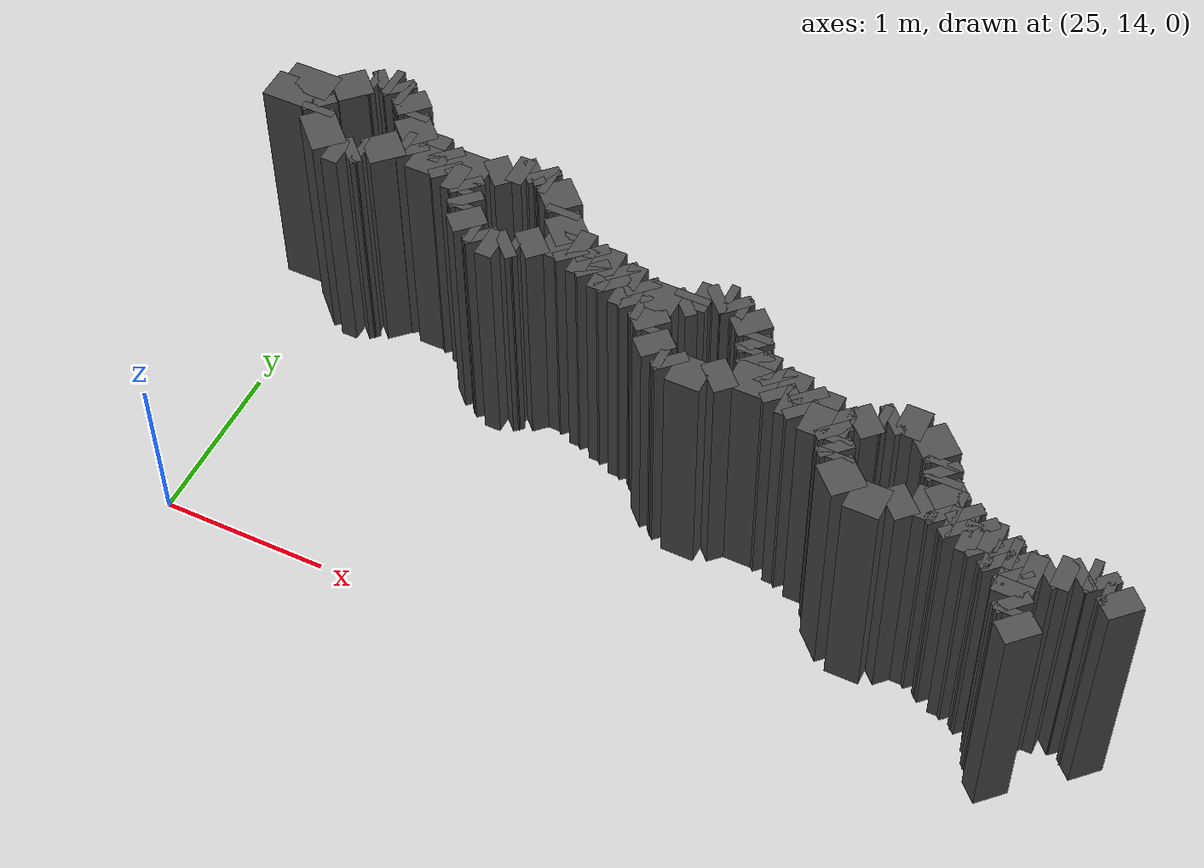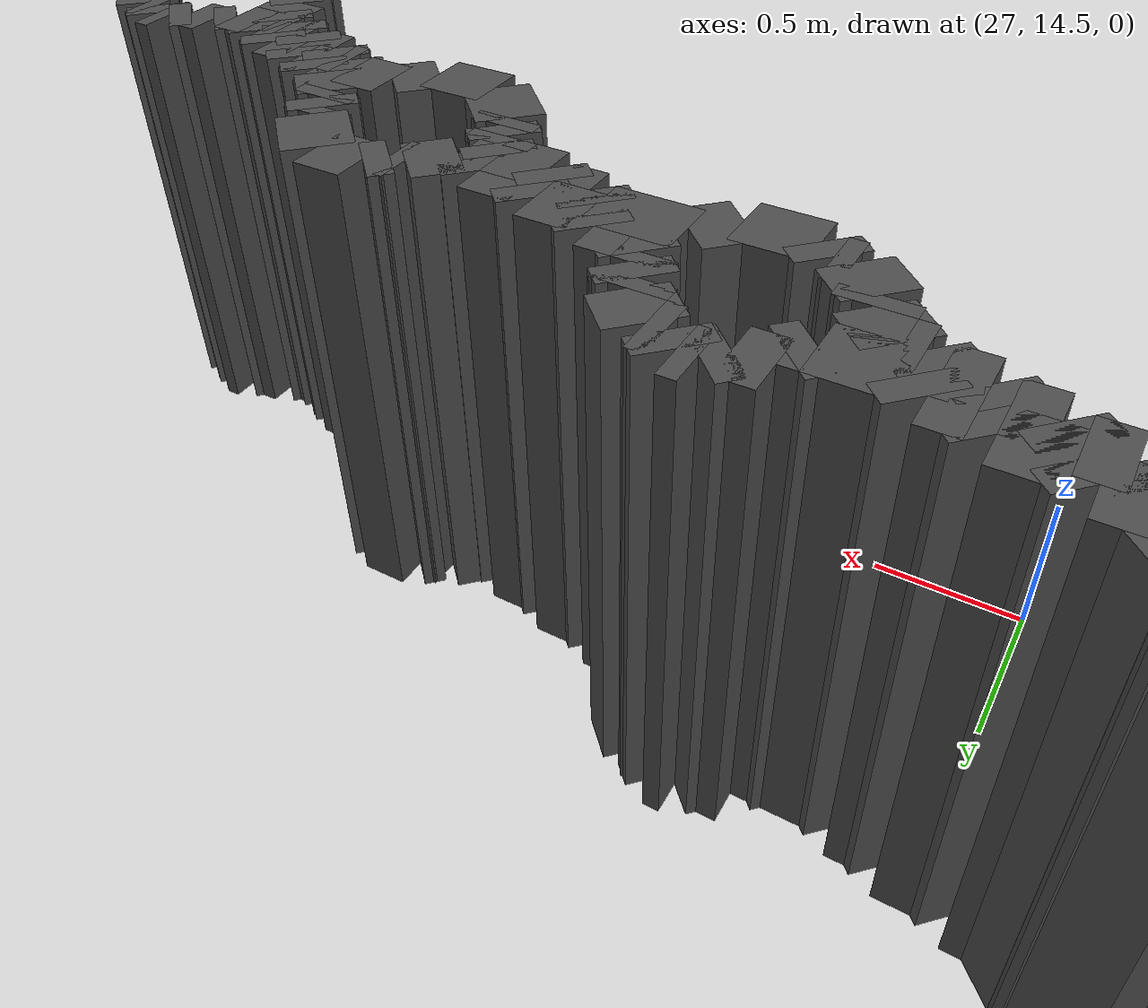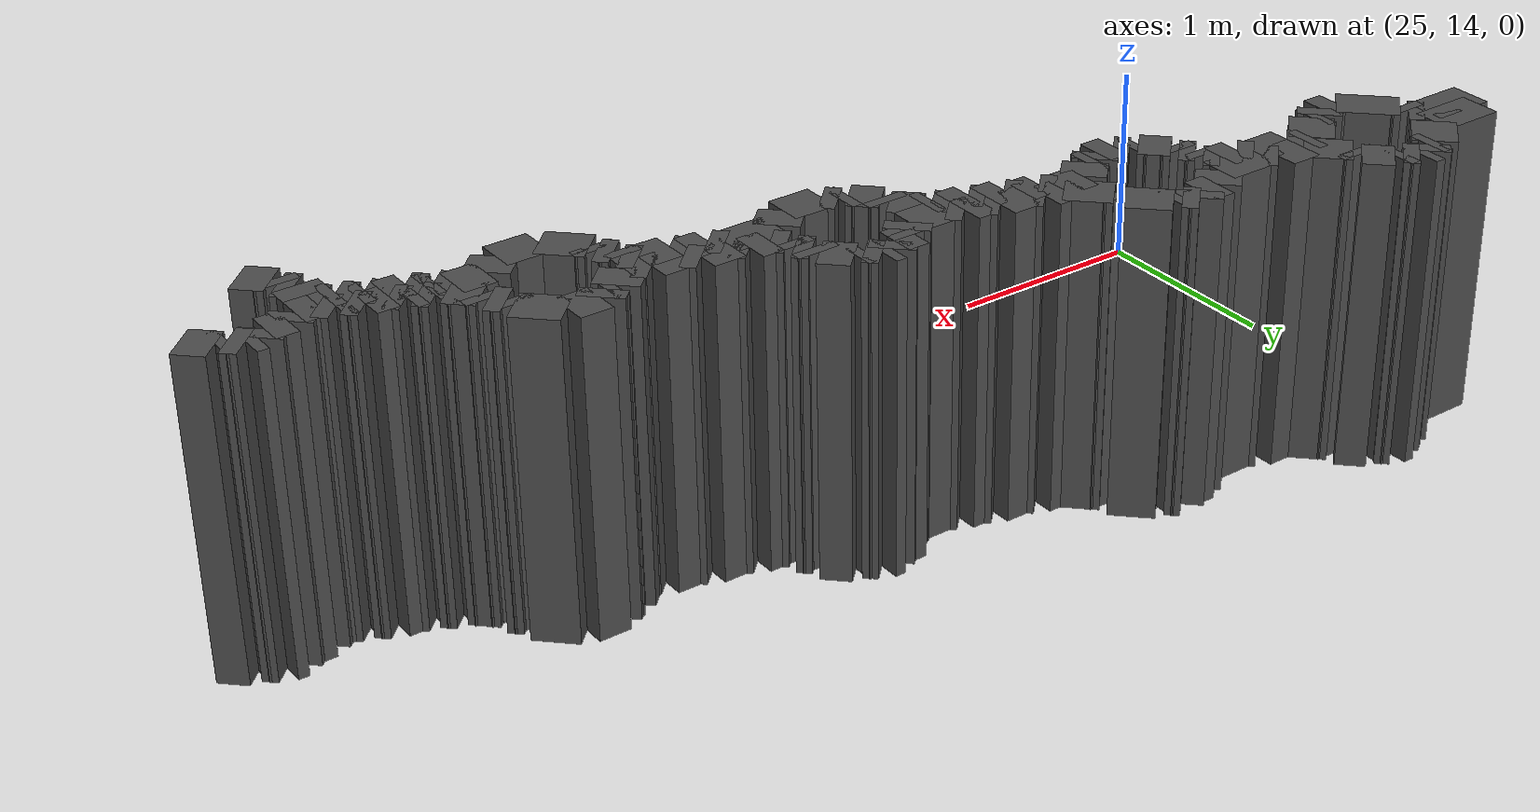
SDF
<sdf version="1.9">
 <model name="generated_walls">
  <static>true</static>
  <link name="wall_161_1486">
   <pose>29.850 14.300 0.75 0 0 2.356</pose>
   <collision name="collision"><geometry><box><size>0.141 0.2 1.5</size></box></geometry></collision>
   <visual name="visual">
    <geometry><box><size>0.141 0.2 1.5</size></box></geometry>
    <material><ambient>0.3 0.3 0.3 1</ambient></material>
   </visual>
  </link>
  <link name="wall_161_1487">
   <pose>29.800 14.375 0.75 0 0 1.571</pose>
   <collision name="collision"><geometry><box><size>0.050 0.2 1.5</size></box></geometry></collision>
   <visual name="visual">
    <geometry><box><size>0.050 0.2 1.5</size></box></geometry>
    <material><ambient>0.3 0.3 0.3 1</ambient></material>
   </visual>
  </link>
  <link name="wall_161_1488">
   <pose>29.775 14.425 0.75 0 0 2.356</pose>
   <collision name="collision"><geometry><box><size>0.071 0.2 1.5</size></box></geometry></collision>
   <visual name="visual">
    <geometry><box><size>0.071 0.2 1.5</size></box></geometry>
    <material><ambient>0.3 0.3 0.3 1</ambient></material>
   </visual>
  </link>
  <link name="wall_161_1489">
   <pose>29.750 14.500 0.75 0 0 1.571</pose>
   <collision name="collision"><geometry><box><size>0.100 0.2 1.5</size></box></geometry></collision>
   <visual name="visual">
    <geometry><box><size>0.100 0.2 1.5</size></box></geometry>
    <material><ambient>0.3 0.3 0.3 1</ambient></material>
   </visual>
  </link>
  <link name="wall_161_1490">
   <pose>29.725 14.575 0.75 0 0 2.356</pose>
   <collision name="collision"><geometry><box><size>0.071 0.2 1.5</size></box></geometry></collision>
   <visual name="visual">
    <geometry><box><size>0.071 0.2 1.5</size></box></geometry>
    <material><ambient>0.3 0.3 0.3 1</ambient></material>
   </visual>
  </link>
  <link name="wall_161_1491">
   <pose>29.675 14.600 0.75 0 0 3.142</pose>
   <collision name="collision"><geometry><box><size>0.050 0.2 1.5</size></box></geometry></collision>
   <visual name="visual">
    <geometry><box><size>0.050 0.2 1.5</size></box></geometry>
    <material><ambient>0.3 0.3 0.3 1</ambient></material>
   </visual>
  </link>
  <link name="wall_161_1492">
   <pose>29.625 14.625 0.75 0 0 2.356</pose>
   <collision name="collision"><geometry><box><size>0.071 0.2 1.5</size></box></geometry></collision>
   <visual name="visual">
    <geometry><box><size>0.071 0.2 1.5</size></box></geometry>
    <material><ambient>0.3 0.3 0.3 1</ambient></material>
   </visual>
  </link>
  <link name="wall_161_1493">
   <pose>29.575 14.650 0.75 0 0 3.142</pose>
   <collision name="collision"><geometry><box><size>0.050 0.2 1.5</size></box></geometry></collision>
   <visual name="visual">
    <geometry><box><size>0.050 0.2 1.5</size></box></geometry>
    <material><ambient>0.3 0.3 0.3 1</ambient></material>
   </visual>
  </link>
  <link name="wall_161_1494">
   <pose>29.525 14.675 0.75 0 0 2.356</pose>
   <collision name="collision"><geometry><box><size>0.071 0.2 1.5</size></box></geometry></collision>
   <visual name="visual">
    <geometry><box><size>0.071 0.2 1.5</size></box></geometry>
    <material><ambient>0.3 0.3 0.3 1</ambient></material>
   </visual>
  </link>
  <link name="wall_161_1495">
   <pose>29.450 14.700 0.75 0 0 3.142</pose>
   <collision name="collision"><geometry><box><size>0.100 0.2 1.5</size></box></geometry></collision>
   <visual name="visual">
    <geometry><box><size>0.100 0.2 1.5</size></box></geometry>
    <material><ambient>0.3 0.3 0.3 1</ambient></material>
   </visual>
  </link>
  <link name="wall_161_1496">
   <pose>29.375 14.725 0.75 0 0 2.356</pose>
   <collision name="collision"><geometry><box><size>0.071 0.2 1.5</size></box></geometry></collision>
   <visual name="visual">
    <geometry><box><size>0.071 0.2 1.5</size></box></geometry>
    <material><ambient>0.3 0.3 0.3 1</ambient></material>
   </visual>
  </link>
  <link name="wall_161_1497">
   <pose>29.325 14.750 0.75 0 0 3.142</pose>
   <collision name="collision"><geometry><box><size>0.050 0.2 1.5</size></box></geometry></collision>
   <visual name="visual">
    <geometry><box><size>0.050 0.2 1.5</size></box></geometry>
    <material><ambient>0.3 0.3 0.3 1</ambient></material>
   </visual>
  </link>
  <link name="wall_161_1498">
   <pose>29.275 14.775 0.75 0 0 2.356</pose>
   <collision name="collision"><geometry><box><size>0.071 0.2 1.5</size></box></geometry></collision>
   <visual name="visual">
    <geometry><box><size>0.071 0.2 1.5</size></box></geometry>
    <material><ambient>0.3 0.3 0.3 1</ambient></material>
   </visual>
  </link>
  <link name="wall_161_1499">
   <pose>29.175 14.800 0.75 0 0 3.142</pose>
   <collision name="collision"><geometry><box><size>0.150 0.2 1.5</size></box></geometry></collision>
   <visual name="visual">
    <geometry><box><size>0.150 0.2 1.5</size></box></geometry>
    <material><ambient>0.3 0.3 0.3 1</ambient></material>
   </visual>
  </link>
  <link name="wall_161_1500">
   <pose>29.050 14.750 0.75 0 0 -2.356</pose>
   <collision name="collision"><geometry><box><size>0.141 0.2 1.5</size></box></geometry></collision>
   <visual name="visual">
    <geometry><box><size>0.141 0.2 1.5</size></box></geometry>
    <material><ambient>0.3 0.3 0.3 1</ambient></material>
   </visual>
  </link>
  <link name="wall_161_1501">
   <pose>28.900 14.700 0.75 0 0 3.142</pose>
   <collision name="collision"><geometry><box><size>0.200 0.2 1.5</size></box></geometry></collision>
   <visual name="visual">
    <geometry><box><size>0.200 0.2 1.5</size></box></geometry>
    <material><ambient>0.3 0.3 0.3 1</ambient></material>
   </visual>
  </link>
  <link name="wall_161_1502">
   <pose>28.725 14.775 0.75 0 0 2.356</pose>
   <collision name="collision"><geometry><box><size>0.212 0.2 1.5</size></box></geometry></collision>
   <visual name="visual">
    <geometry><box><size>0.212 0.2 1.5</size></box></geometry>
    <material><ambient>0.3 0.3 0.3 1</ambient></material>
   </visual>
  </link>
  <link name="wall_161_1503">
   <pose>28.650 14.875 0.75 0 0 1.571</pose>
   <collision name="collision"><geometry><box><size>0.050 0.2 1.5</size></box></geometry></collision>
   <visual name="visual">
    <geometry><box><size>0.050 0.2 1.5</size></box></geometry>
    <material><ambient>0.3 0.3 0.3 1</ambient></material>
   </visual>
  </link>
  <link name="wall_161_1504">
   <pose>28.625 14.925 0.75 0 0 2.356</pose>
   <collision name="collision"><geometry><box><size>0.071 0.2 1.5</size></box></geometry></collision>
   <visual name="visual">
    <geometry><box><size>0.071 0.2 1.5</size></box></geometry>
    <material><ambient>0.3 0.3 0.3 1</ambient></material>
   </visual>
  </link>
  <link name="wall_161_1505">
   <pose>28.600 14.975 0.75 0 0 1.571</pose>
   <collision name="collision"><geometry><box><size>0.050 0.2 1.5</size></box></geometry></collision>
   <visual name="visual">
    <geometry><box><size>0.050 0.2 1.5</size></box></geometry>
    <material><ambient>0.3 0.3 0.3 1</ambient></material>
   </visual>
  </link>
  <link name="wall_161_1506">
   <pose>28.575 15.025 0.75 0 0 2.356</pose>
   <collision name="collision"><geometry><box><size>0.071 0.2 1.5</size></box></geometry></collision>
   <visual name="visual">
    <geometry><box><size>0.071 0.2 1.5</size></box></geometry>
    <material><ambient>0.3 0.3 0.3 1</ambient></material>
   </visual>
  </link>
  <link name="wall_161_1507">
   <pose>28.475 15.050 0.75 0 0 3.142</pose>
   <collision name="collision"><geometry><box><size>0.150 0.2 1.5</size></box></geometry></collision>
   <visual name="visual">
    <geometry><box><size>0.150 0.2 1.5</size></box></geometry>
    <material><ambient>0.3 0.3 0.3 1</ambient></material>
   </visual>
  </link>
  <link name="wall_161_1508">
   <pose>28.375 15.075 0.75 0 0 2.356</pose>
   <collision name="collision"><geometry><box><size>0.071 0.2 1.5</size></box></geometry></collision>
   <visual name="visual">
    <geometry><box><size>0.071 0.2 1.5</size></box></geometry>
    <material><ambient>0.3 0.3 0.3 1</ambient></material>
   </visual>
  </link>
  <link name="wall_161_1509">
   <pose>28.300 15.100 0.75 0 0 3.142</pose>
   <collision name="collision"><geometry><box><size>0.100 0.2 1.5</size></box></geometry></collision>
   <visual name="visual">
    <geometry><box><size>0.100 0.2 1.5</size></box></geometry>
    <material><ambient>0.3 0.3 0.3 1</ambient></material>
   </visual>
  </link>
  <link name="wall_161_1510">
   <pose>28.225 15.125 0.75 0 0 2.356</pose>
   <collision name="collision"><geometry><box><size>0.071 0.2 1.5</size></box></geometry></collision>
   <visual name="visual">
    <geometry><box><size>0.071 0.2 1.5</size></box></geometry>
    <material><ambient>0.3 0.3 0.3 1</ambient></material>
   </visual>
  </link>
  <link name="wall_161_1511">
   <pose>28.075 15.150 0.75 0 0 3.142</pose>
   <collision name="collision"><geometry><box><size>0.250 0.2 1.5</size></box></geometry></collision>
   <visual name="visual">
    <geometry><box><size>0.250 0.2 1.5</size></box></geometry>
    <material><ambient>0.3 0.3 0.3 1</ambient></material>
   </visual>
  </link>
  <link name="wall_161_1512">
   <pose>27.900 15.100 0.75 0 0 -2.356</pose>
   <collision name="collision"><geometry><box><size>0.141 0.2 1.5</size></box></geometry></collision>
   <visual name="visual">
    <geometry><box><size>0.141 0.2 1.5</size></box></geometry>
    <material><ambient>0.3 0.3 0.3 1</ambient></material>
   </visual>
  </link>
  <link name="wall_161_1513">
   <pose>27.750 15.050 0.75 0 0 3.142</pose>
   <collision name="collision"><geometry><box><size>0.200 0.2 1.5</size></box></geometry></collision>
   <visual name="visual">
    <geometry><box><size>0.200 0.2 1.5</size></box></geometry>
    <material><ambient>0.3 0.3 0.3 1</ambient></material>
   </visual>
  </link>
  <link name="wall_161_1514">
   <pose>27.625 15.075 0.75 0 0 2.356</pose>
   <collision name="collision"><geometry><box><size>0.071 0.2 1.5</size></box></geometry></collision>
   <visual name="visual">
    <geometry><box><size>0.071 0.2 1.5</size></box></geometry>
    <material><ambient>0.3 0.3 0.3 1</ambient></material>
   </visual>
  </link>
  <link name="wall_161_1515">
   <pose>27.575 15.100 0.75 0 0 3.142</pose>
   <collision name="collision"><geometry><box><size>0.050 0.2 1.5</size></box></geometry></collision>
   <visual name="visual">
    <geometry><box><size>0.050 0.2 1.5</size></box></geometry>
    <material><ambient>0.3 0.3 0.3 1</ambient></material>
   </visual>
  </link>
  <link name="wall_161_1516">
   <pose>27.500 15.150 0.75 0 0 2.356</pose>
   <collision name="collision"><geometry><box><size>0.141 0.2 1.5</size></box></geometry></collision>
   <visual name="visual">
    <geometry><box><size>0.141 0.2 1.5</size></box></geometry>
    <material><ambient>0.3 0.3 0.3 1</ambient></material>
   </visual>
  </link>
  <link name="wall_161_1517">
   <pose>27.450 15.225 0.75 0 0 1.571</pose>
   <collision name="collision"><geometry><box><size>0.050 0.2 1.5</size></box></geometry></collision>
   <visual name="visual">
    <geometry><box><size>0.050 0.2 1.5</size></box></geometry>
    <material><ambient>0.3 0.3 0.3 1</ambient></material>
   </visual>
  </link>
  <link name="wall_161_1518">
   <pose>27.400 15.300 0.75 0 0 2.356</pose>
   <collision name="collision"><geometry><box><size>0.141 0.2 1.5</size></box></geometry></collision>
   <visual name="visual">
    <geometry><box><size>0.141 0.2 1.5</size></box></geometry>
    <material><ambient>0.3 0.3 0.3 1</ambient></material>
   </visual>
  </link>
  <link name="wall_161_1519">
   <pose>27.325 15.350 0.75 0 0 3.142</pose>
   <collision name="collision"><geometry><box><size>0.050 0.2 1.5</size></box></geometry></collision>
   <visual name="visual">
    <geometry><box><size>0.050 0.2 1.5</size></box></geometry>
    <material><ambient>0.3 0.3 0.3 1</ambient></material>
   </visual>
  </link>
  <link name="wall_161_1520">
   <pose>27.275 15.375 0.75 0 0 2.356</pose>
   <collision name="collision"><geometry><box><size>0.071 0.2 1.5</size></box></geometry></collision>
   <visual name="visual">
    <geometry><box><size>0.071 0.2 1.5</size></box></geometry>
    <material><ambient>0.3 0.3 0.3 1</ambient></material>
   </visual>
  </link>
  <link name="wall_161_1521">
   <pose>27.200 15.400 0.75 0 0 3.142</pose>
   <collision name="collision"><geometry><box><size>0.100 0.2 1.5</size></box></geometry></collision>
   <visual name="visual">
    <geometry><box><size>0.100 0.2 1.5</size></box></geometry>
    <material><ambient>0.3 0.3 0.3 1</ambient></material>
   </visual>
  </link>
  <link name="wall_161_1522">
   <pose>27.125 15.425 0.75 0 0 2.356</pose>
   <collision name="collision"><geometry><box><size>0.071 0.2 1.5</size></box></geometry></collision>
   <visual name="visual">
    <geometry><box><size>0.071 0.2 1.5</size></box></geometry>
    <material><ambient>0.3 0.3 0.3 1</ambient></material>
   </visual>
  </link>
  <link name="wall_161_1523">
   <pose>27.050 15.450 0.75 0 0 3.142</pose>
   <collision name="collision"><geometry><box><size>0.100 0.2 1.5</size></box></geometry></collision>
   <visual name="visual">
    <geometry><box><size>0.100 0.2 1.5</size></box></geometry>
    <material><ambient>0.3 0.3 0.3 1</ambient></material>
   </visual>
  </link>
  <link name="wall_161_1524">
   <pose>26.975 15.475 0.75 0 0 2.356</pose>
   <collision name="collision"><geometry><box><size>0.071 0.2 1.5</size></box></geometry></collision>
   <visual name="visual">
    <geometry><box><size>0.071 0.2 1.5</size></box></geometry>
    <material><ambient>0.3 0.3 0.3 1</ambient></material>
   </visual>
  </link>
  <link name="wall_161_1525">
   <pose>26.900 15.500 0.75 0 0 3.142</pose>
   <collision name="collision"><geometry><box><size>0.100 0.2 1.5</size></box></geometry></collision>
   <visual name="visual">
    <geometry><box><size>0.100 0.2 1.5</size></box></geometry>
    <material><ambient>0.3 0.3 0.3 1</ambient></material>
   </visual>
  </link>
  <link name="wall_161_1526">
   <pose>26.825 15.525 0.75 0 0 2.356</pose>
   <collision name="collision"><geometry><box><size>0.071 0.2 1.5</size></box></geometry></collision>
   <visual name="visual">
    <geometry><box><size>0.071 0.2 1.5</size></box></geometry>
    <material><ambient>0.3 0.3 0.3 1</ambient></material>
   </visual>
  </link>
  <link name="wall_161_1527">
   <pose>26.725 15.550 0.75 0 0 3.142</pose>
   <collision name="collision"><geometry><box><size>0.150 0.2 1.5</size></box></geometry></collision>
   <visual name="visual">
    <geometry><box><size>0.150 0.2 1.5</size></box></geometry>
    <material><ambient>0.3 0.3 0.3 1</ambient></material>
   </visual>
  </link>
  <link name="wall_161_1528">
   <pose>26.600 15.500 0.75 0 0 -2.356</pose>
   <collision name="collision"><geometry><box><size>0.141 0.2 1.5</size></box></geometry></collision>
   <visual name="visual">
    <geometry><box><size>0.141 0.2 1.5</size></box></geometry>
    <material><ambient>0.3 0.3 0.3 1</ambient></material>
   </visual>
  </link>
  <link name="wall_161_1529">
   <pose>26.525 15.450 0.75 0 0 3.142</pose>
   <collision name="collision"><geometry><box><size>0.050 0.2 1.5</size></box></geometry></collision>
   <visual name="visual">
    <geometry><box><size>0.050 0.2 1.5</size></box></geometry>
    <material><ambient>0.3 0.3 0.3 1</ambient></material>
   </visual>
  </link>
  <link name="wall_161_1530">
   <pose>26.475 15.425 0.75 0 0 -2.356</pose>
   <collision name="collision"><geometry><box><size>0.071 0.2 1.5</size></box></geometry></collision>
   <visual name="visual">
    <geometry><box><size>0.071 0.2 1.5</size></box></geometry>
    <material><ambient>0.3 0.3 0.3 1</ambient></material>
   </visual>
  </link>
  <link name="wall_161_1531">
   <pose>26.400 15.400 0.75 0 0 3.142</pose>
   <collision name="collision"><geometry><box><size>0.100 0.2 1.5</size></box></geometry></collision>
   <visual name="visual">
    <geometry><box><size>0.100 0.2 1.5</size></box></geometry>
    <material><ambient>0.3 0.3 0.3 1</ambient></material>
   </visual>
  </link>
  <link name="wall_161_1532">
   <pose>26.325 15.425 0.75 0 0 2.356</pose>
   <collision name="collision"><geometry><box><size>0.071 0.2 1.5</size></box></geometry></collision>
   <visual name="visual">
    <geometry><box><size>0.071 0.2 1.5</size></box></geometry>
    <material><ambient>0.3 0.3 0.3 1</ambient></material>
   </visual>
  </link>
  <link name="wall_161_1533">
   <pose>26.275 15.450 0.75 0 0 3.142</pose>
   <collision name="collision"><geometry><box><size>0.050 0.2 1.5</size></box></geometry></collision>
   <visual name="visual">
    <geometry><box><size>0.050 0.2 1.5</size></box></geometry>
    <material><ambient>0.3 0.3 0.3 1</ambient></material>
   </visual>
  </link>
  <link name="wall_161_1534">
   <pose>26.200 15.500 0.75 0 0 2.356</pose>
   <collision name="collision"><geometry><box><size>0.141 0.2 1.5</size></box></geometry></collision>
   <visual name="visual">
    <geometry><box><size>0.141 0.2 1.5</size></box></geometry>
    <material><ambient>0.3 0.3 0.3 1</ambient></material>
   </visual>
  </link>
  <link name="wall_161_1535">
   <pose>26.150 15.575 0.75 0 0 1.571</pose>
   <collision name="collision"><geometry><box><size>0.050 0.2 1.5</size></box></geometry></collision>
   <visual name="visual">
    <geometry><box><size>0.050 0.2 1.5</size></box></geometry>
    <material><ambient>0.3 0.3 0.3 1</ambient></material>
   </visual>
  </link>
  <link name="wall_161_1536">
   <pose>26.125 15.625 0.75 0 0 2.356</pose>
   <collision name="collision"><geometry><box><size>0.071 0.2 1.5</size></box></geometry></collision>
   <visual name="visual">
    <geometry><box><size>0.071 0.2 1.5</size></box></geometry>
    <material><ambient>0.3 0.3 0.3 1</ambient></material>
   </visual>
  </link>
  <link name="wall_161_1537">
   <pose>26.100 15.675 0.75 0 0 1.571</pose>
   <collision name="collision"><geometry><box><size>0.050 0.2 1.5</size></box></geometry></collision>
   <visual name="visual">
    <geometry><box><size>0.050 0.2 1.5</size></box></geometry>
    <material><ambient>0.3 0.3 0.3 1</ambient></material>
   </visual>
  </link>
  <link name="wall_161_1538">
   <pose>26.075 15.725 0.75 0 0 2.356</pose>
   <collision name="collision"><geometry><box><size>0.071 0.2 1.5</size></box></geometry></collision>
   <visual name="visual">
    <geometry><box><size>0.071 0.2 1.5</size></box></geometry>
    <material><ambient>0.3 0.3 0.3 1</ambient></material>
   </visual>
  </link>
  <link name="wall_161_1539">
   <pose>26.000 15.750 0.75 0 0 3.142</pose>
   <collision name="collision"><geometry><box><size>0.100 0.2 1.5</size></box></geometry></collision>
   <visual name="visual">
    <geometry><box><size>0.100 0.2 1.5</size></box></geometry>
    <material><ambient>0.3 0.3 0.3 1</ambient></material>
   </visual>
  </link>
  <link name="wall_161_1540">
   <pose>25.925 15.775 0.75 0 0 2.356</pose>
   <collision name="collision"><geometry><box><size>0.071 0.2 1.5</size></box></geometry></collision>
   <visual name="visual">
    <geometry><box><size>0.071 0.2 1.5</size></box></geometry>
    <material><ambient>0.3 0.3 0.3 1</ambient></material>
   </visual>
  </link>
  <link name="wall_161_1541">
   <pose>25.800 15.800 0.75 0 0 3.142</pose>
   <collision name="collision"><geometry><box><size>0.200 0.2 1.5</size></box></geometry></collision>
   <visual name="visual">
    <geometry><box><size>0.200 0.2 1.5</size></box></geometry>
    <material><ambient>0.3 0.3 0.3 1</ambient></material>
   </visual>
  </link>
  <link name="wall_161_1542">
   <pose>25.675 15.825 0.75 0 0 2.356</pose>
   <collision name="collision"><geometry><box><size>0.071 0.2 1.5</size></box></geometry></collision>
   <visual name="visual">
    <geometry><box><size>0.071 0.2 1.5</size></box></geometry>
    <material><ambient>0.3 0.3 0.3 1</ambient></material>
   </visual>
  </link>
  <link name="wall_161_1543">
   <pose>25.625 15.850 0.75 0 0 3.142</pose>
   <collision name="collision"><geometry><box><size>0.050 0.2 1.5</size></box></geometry></collision>
   <visual name="visual">
    <geometry><box><size>0.050 0.2 1.5</size></box></geometry>
    <material><ambient>0.3 0.3 0.3 1</ambient></material>
   </visual>
  </link>
  <link name="wall_161_1544">
   <pose>25.525 15.775 0.75 0 0 -2.356</pose>
   <collision name="collision"><geometry><box><size>0.212 0.2 1.5</size></box></geometry></collision>
   <visual name="visual">
    <geometry><box><size>0.212 0.2 1.5</size></box></geometry>
    <material><ambient>0.3 0.3 0.3 1</ambient></material>
   </visual>
  </link>
  <link name="wall_161_1545">
   <pose>25.425 15.700 0.75 0 0 3.142</pose>
   <collision name="collision"><geometry><box><size>0.050 0.2 1.5</size></box></geometry></collision>
   <visual name="visual">
    <geometry><box><size>0.050 0.2 1.5</size></box></geometry>
    <material><ambient>0.3 0.3 0.3 1</ambient></material>
   </visual>
  </link>
  <link name="wall_161_1546">
   <pose>25.375 15.675 0.75 0 0 -2.356</pose>
   <collision name="collision"><geometry><box><size>0.071 0.2 1.5</size></box></geometry></collision>
   <visual name="visual">
    <geometry><box><size>0.071 0.2 1.5</size></box></geometry>
    <material><ambient>0.3 0.3 0.3 1</ambient></material>
   </visual>
  </link>
  <link name="wall_161_1547">
   <pose>25.300 15.650 0.75 0 0 3.142</pose>
   <collision name="collision"><geometry><box><size>0.100 0.2 1.5</size></box></geometry></collision>
   <visual name="visual">
    <geometry><box><size>0.100 0.2 1.5</size></box></geometry>
    <material><ambient>0.3 0.3 0.3 1</ambient></material>
   </visual>
  </link>
  <link name="wall_161_1548">
   <pose>25.150 15.750 0.75 0 0 2.356</pose>
   <collision name="collision"><geometry><box><size>0.283 0.2 1.5</size></box></geometry></collision>
   <visual name="visual">
    <geometry><box><size>0.283 0.2 1.5</size></box></geometry>
    <material><ambient>0.3 0.3 0.3 1</ambient></material>
   </visual>
  </link>
  <link name="wall_161_1549">
   <pose>25.050 15.875 0.75 0 0 1.571</pose>
   <collision name="collision"><geometry><box><size>0.050 0.2 1.5</size></box></geometry></collision>
   <visual name="visual">
    <geometry><box><size>0.050 0.2 1.5</size></box></geometry>
    <material><ambient>0.3 0.3 0.3 1</ambient></material>
   </visual>
  </link>
  <link name="wall_161_1550">
   <pose>25.025 15.925 0.75 0 0 2.356</pose>
   <collision name="collision"><geometry><box><size>0.071 0.2 1.5</size></box></geometry></collision>
   <visual name="visual">
    <geometry><box><size>0.071 0.2 1.5</size></box></geometry>
    <material><ambient>0.3 0.3 0.3 1</ambient></material>
   </visual>
  </link>
  <link name="wall_161_1551">
   <pose>24.850 15.950 0.75 0 0 3.142</pose>
   <collision name="collision"><geometry><box><size>0.300 0.2 1.5</size></box></geometry></collision>
   <visual name="visual">
    <geometry><box><size>0.300 0.2 1.5</size></box></geometry>
    <material><ambient>0.3 0.3 0.3 1</ambient></material>
   </visual>
  </link>
  <link name="wall_161_2592">
   <pose>24.900 16.050 0.75 0 0 0.000</pose>
   <collision name="collision"><geometry><box><size>0.300 0.2 1.5</size></box></geometry></collision>
   <visual name="visual">
    <geometry><box><size>0.300 0.2 1.5</size></box></geometry>
    <material><ambient>0.3 0.3 0.3 1</ambient></material>
   </visual>
  </link>
  <link name="wall_161_2593">
   <pose>25.125 16.125 0.75 0 0 0.785</pose>
   <collision name="collision"><geometry><box><size>0.212 0.2 1.5</size></box></geometry></collision>
   <visual name="visual">
    <geometry><box><size>0.212 0.2 1.5</size></box></geometry>
    <material><ambient>0.3 0.3 0.3 1</ambient></material>
   </visual>
  </link>
  <link name="wall_161_2594">
   <pose>25.225 16.200 0.75 0 0 0.000</pose>
   <collision name="collision"><geometry><box><size>0.050 0.2 1.5</size></box></geometry></collision>
   <visual name="visual">
    <geometry><box><size>0.050 0.2 1.5</size></box></geometry>
    <material><ambient>0.3 0.3 0.3 1</ambient></material>
   </visual>
  </link>
  <link name="wall_161_2595">
   <pose>25.275 16.225 0.75 0 0 0.785</pose>
   <collision name="collision"><geometry><box><size>0.071 0.2 1.5</size></box></geometry></collision>
   <visual name="visual">
    <geometry><box><size>0.071 0.2 1.5</size></box></geometry>
    <material><ambient>0.3 0.3 0.3 1</ambient></material>
   </visual>
  </link>
  <link name="wall_161_2596">
   <pose>25.325 16.250 0.75 0 0 0.000</pose>
   <collision name="collision"><geometry><box><size>0.050 0.2 1.5</size></box></geometry></collision>
   <visual name="visual">
    <geometry><box><size>0.050 0.2 1.5</size></box></geometry>
    <material><ambient>0.3 0.3 0.3 1</ambient></material>
   </visual>
  </link>
  <link name="wall_161_2597">
   <pose>25.375 16.225 0.75 0 0 -0.785</pose>
   <collision name="collision"><geometry><box><size>0.071 0.2 1.5</size></box></geometry></collision>
   <visual name="visual">
    <geometry><box><size>0.071 0.2 1.5</size></box></geometry>
    <material><ambient>0.3 0.3 0.3 1</ambient></material>
   </visual>
  </link>
  <link name="wall_161_2598">
   <pose>25.425 16.200 0.75 0 0 0.000</pose>
   <collision name="collision"><geometry><box><size>0.050 0.2 1.5</size></box></geometry></collision>
   <visual name="visual">
    <geometry><box><size>0.050 0.2 1.5</size></box></geometry>
    <material><ambient>0.3 0.3 0.3 1</ambient></material>
   </visual>
  </link>
  <link name="wall_161_2599">
   <pose>25.500 16.150 0.75 0 0 -0.785</pose>
   <collision name="collision"><geometry><box><size>0.141 0.2 1.5</size></box></geometry></collision>
   <visual name="visual">
    <geometry><box><size>0.141 0.2 1.5</size></box></geometry>
    <material><ambient>0.3 0.3 0.3 1</ambient></material>
   </visual>
  </link>
  <link name="wall_161_2600">
   <pose>25.550 16.075 0.75 0 0 -1.571</pose>
   <collision name="collision"><geometry><box><size>0.050 0.2 1.5</size></box></geometry></collision>
   <visual name="visual">
    <geometry><box><size>0.050 0.2 1.5</size></box></geometry>
    <material><ambient>0.3 0.3 0.3 1</ambient></material>
   </visual>
  </link>
  <link name="wall_161_2601">
   <pose>25.625 15.975 0.75 0 0 -0.785</pose>
   <collision name="collision"><geometry><box><size>0.212 0.2 1.5</size></box></geometry></collision>
   <visual name="visual">
    <geometry><box><size>0.212 0.2 1.5</size></box></geometry>
    <material><ambient>0.3 0.3 0.3 1</ambient></material>
   </visual>
  </link>
  <link name="wall_161_2602">
   <pose>25.775 15.900 0.75 0 0 0.000</pose>
   <collision name="collision"><geometry><box><size>0.150 0.2 1.5</size></box></geometry></collision>
   <visual name="visual">
    <geometry><box><size>0.150 0.2 1.5</size></box></geometry>
    <material><ambient>0.3 0.3 0.3 1</ambient></material>
   </visual>
  </link>
  <link name="wall_161_2603">
   <pose>25.875 15.875 0.75 0 0 -0.785</pose>
   <collision name="collision"><geometry><box><size>0.071 0.2 1.5</size></box></geometry></collision>
   <visual name="visual">
    <geometry><box><size>0.071 0.2 1.5</size></box></geometry>
    <material><ambient>0.3 0.3 0.3 1</ambient></material>
   </visual>
  </link>
  <link name="wall_161_2604">
   <pose>26.025 15.850 0.75 0 0 0.000</pose>
   <collision name="collision"><geometry><box><size>0.250 0.2 1.5</size></box></geometry></collision>
   <visual name="visual">
    <geometry><box><size>0.250 0.2 1.5</size></box></geometry>
    <material><ambient>0.3 0.3 0.3 1</ambient></material>
   </visual>
  </link>
  <link name="wall_161_2605">
   <pose>26.200 15.900 0.75 0 0 0.785</pose>
   <collision name="collision"><geometry><box><size>0.141 0.2 1.5</size></box></geometry></collision>
   <visual name="visual">
    <geometry><box><size>0.141 0.2 1.5</size></box></geometry>
    <material><ambient>0.3 0.3 0.3 1</ambient></material>
   </visual>
  </link>
  <link name="wall_161_2606">
   <pose>26.300 15.950 0.75 0 0 0.000</pose>
   <collision name="collision"><geometry><box><size>0.100 0.2 1.5</size></box></geometry></collision>
   <visual name="visual">
    <geometry><box><size>0.100 0.2 1.5</size></box></geometry>
    <material><ambient>0.3 0.3 0.3 1</ambient></material>
   </visual>
  </link>
  <link name="wall_161_2607">
   <pose>26.375 15.975 0.75 0 0 0.785</pose>
   <collision name="collision"><geometry><box><size>0.071 0.2 1.5</size></box></geometry></collision>
   <visual name="visual">
    <geometry><box><size>0.071 0.2 1.5</size></box></geometry>
    <material><ambient>0.3 0.3 0.3 1</ambient></material>
   </visual>
  </link>
  <link name="wall_161_2608">
   <pose>26.425 15.975 0.75 0 0 -0.785</pose>
   <collision name="collision"><geometry><box><size>0.071 0.2 1.5</size></box></geometry></collision>
   <visual name="visual">
    <geometry><box><size>0.071 0.2 1.5</size></box></geometry>
    <material><ambient>0.3 0.3 0.3 1</ambient></material>
   </visual>
  </link>
  <link name="wall_161_2609">
   <pose>26.475 15.950 0.75 0 0 0.000</pose>
   <collision name="collision"><geometry><box><size>0.050 0.2 1.5</size></box></geometry></collision>
   <visual name="visual">
    <geometry><box><size>0.050 0.2 1.5</size></box></geometry>
    <material><ambient>0.3 0.3 0.3 1</ambient></material>
   </visual>
  </link>
  <link name="wall_161_2610">
   <pose>26.575 15.875 0.75 0 0 -0.785</pose>
   <collision name="collision"><geometry><box><size>0.212 0.2 1.5</size></box></geometry></collision>
   <visual name="visual">
    <geometry><box><size>0.212 0.2 1.5</size></box></geometry>
    <material><ambient>0.3 0.3 0.3 1</ambient></material>
   </visual>
  </link>
  <link name="wall_161_2611">
   <pose>26.650 15.775 0.75 0 0 -1.571</pose>
   <collision name="collision"><geometry><box><size>0.050 0.2 1.5</size></box></geometry></collision>
   <visual name="visual">
    <geometry><box><size>0.050 0.2 1.5</size></box></geometry>
    <material><ambient>0.3 0.3 0.3 1</ambient></material>
   </visual>
  </link>
  <link name="wall_161_2612">
   <pose>26.725 15.675 0.75 0 0 -0.785</pose>
   <collision name="collision"><geometry><box><size>0.212 0.2 1.5</size></box></geometry></collision>
   <visual name="visual">
    <geometry><box><size>0.212 0.2 1.5</size></box></geometry>
    <material><ambient>0.3 0.3 0.3 1</ambient></material>
   </visual>
  </link>
  <link name="wall_161_2613">
   <pose>26.850 15.600 0.75 0 0 0.000</pose>
   <collision name="collision"><geometry><box><size>0.100 0.2 1.5</size></box></geometry></collision>
   <visual name="visual">
    <geometry><box><size>0.100 0.2 1.5</size></box></geometry>
    <material><ambient>0.3 0.3 0.3 1</ambient></material>
   </visual>
  </link>
  <link name="wall_161_2614">
   <pose>26.925 15.575 0.75 0 0 -0.785</pose>
   <collision name="collision"><geometry><box><size>0.071 0.2 1.5</size></box></geometry></collision>
   <visual name="visual">
    <geometry><box><size>0.071 0.2 1.5</size></box></geometry>
    <material><ambient>0.3 0.3 0.3 1</ambient></material>
   </visual>
  </link>
  <link name="wall_161_2615">
   <pose>27.025 15.550 0.75 0 0 0.000</pose>
   <collision name="collision"><geometry><box><size>0.150 0.2 1.5</size></box></geometry></collision>
   <visual name="visual">
    <geometry><box><size>0.150 0.2 1.5</size></box></geometry>
    <material><ambient>0.3 0.3 0.3 1</ambient></material>
   </visual>
  </link>
  <link name="wall_161_2616">
   <pose>27.125 15.525 0.75 0 0 -0.785</pose>
   <collision name="collision"><geometry><box><size>0.071 0.2 1.5</size></box></geometry></collision>
   <visual name="visual">
    <geometry><box><size>0.071 0.2 1.5</size></box></geometry>
    <material><ambient>0.3 0.3 0.3 1</ambient></material>
   </visual>
  </link>
  <link name="wall_161_2617">
   <pose>27.200 15.500 0.75 0 0 0.000</pose>
   <collision name="collision"><geometry><box><size>0.100 0.2 1.5</size></box></geometry></collision>
   <visual name="visual">
    <geometry><box><size>0.100 0.2 1.5</size></box></geometry>
    <material><ambient>0.3 0.3 0.3 1</ambient></material>
   </visual>
  </link>
  <link name="wall_161_2618">
   <pose>27.275 15.475 0.75 0 0 -0.785</pose>
   <collision name="collision"><geometry><box><size>0.071 0.2 1.5</size></box></geometry></collision>
   <visual name="visual">
    <geometry><box><size>0.071 0.2 1.5</size></box></geometry>
    <material><ambient>0.3 0.3 0.3 1</ambient></material>
   </visual>
  </link>
  <link name="wall_161_2619">
   <pose>27.400 15.450 0.75 0 0 0.000</pose>
   <collision name="collision"><geometry><box><size>0.200 0.2 1.5</size></box></geometry></collision>
   <visual name="visual">
    <geometry><box><size>0.200 0.2 1.5</size></box></geometry>
    <material><ambient>0.3 0.3 0.3 1</ambient></material>
   </visual>
  </link>
  <link name="wall_161_2620">
   <pose>27.525 15.475 0.75 0 0 0.785</pose>
   <collision name="collision"><geometry><box><size>0.071 0.2 1.5</size></box></geometry></collision>
   <visual name="visual">
    <geometry><box><size>0.071 0.2 1.5</size></box></geometry>
    <material><ambient>0.3 0.3 0.3 1</ambient></material>
   </visual>
  </link>
  <link name="wall_161_2621">
   <pose>27.550 15.525 0.75 0 0 1.571</pose>
   <collision name="collision"><geometry><box><size>0.050 0.2 1.5</size></box></geometry></collision>
   <visual name="visual">
    <geometry><box><size>0.050 0.2 1.5</size></box></geometry>
    <material><ambient>0.3 0.3 0.3 1</ambient></material>
   </visual>
  </link>
  <link name="wall_161_2622">
   <pose>27.600 15.550 0.75 0 0 0.000</pose>
   <collision name="collision"><geometry><box><size>0.100 0.2 1.5</size></box></geometry></collision>
   <visual name="visual">
    <geometry><box><size>0.100 0.2 1.5</size></box></geometry>
    <material><ambient>0.3 0.3 0.3 1</ambient></material>
   </visual>
  </link>
  <link name="wall_161_2623">
   <pose>27.675 15.575 0.75 0 0 0.785</pose>
   <collision name="collision"><geometry><box><size>0.071 0.2 1.5</size></box></geometry></collision>
   <visual name="visual">
    <geometry><box><size>0.071 0.2 1.5</size></box></geometry>
    <material><ambient>0.3 0.3 0.3 1</ambient></material>
   </visual>
  </link>
  <link name="wall_161_2624">
   <pose>27.725 15.600 0.75 0 0 0.000</pose>
   <collision name="collision"><geometry><box><size>0.050 0.2 1.5</size></box></geometry></collision>
   <visual name="visual">
    <geometry><box><size>0.050 0.2 1.5</size></box></geometry>
    <material><ambient>0.3 0.3 0.3 1</ambient></material>
   </visual>
  </link>
  <link name="wall_161_2625">
   <pose>27.775 15.575 0.75 0 0 -0.785</pose>
   <collision name="collision"><geometry><box><size>0.071 0.2 1.5</size></box></geometry></collision>
   <visual name="visual">
    <geometry><box><size>0.071 0.2 1.5</size></box></geometry>
    <material><ambient>0.3 0.3 0.3 1</ambient></material>
   </visual>
  </link>
  <link name="wall_161_2626">
   <pose>27.825 15.550 0.75 0 0 0.000</pose>
   <collision name="collision"><geometry><box><size>0.050 0.2 1.5</size></box></geometry></collision>
   <visual name="visual">
    <geometry><box><size>0.050 0.2 1.5</size></box></geometry>
    <material><ambient>0.3 0.3 0.3 1</ambient></material>
   </visual>
  </link>
  <link name="wall_161_2627">
   <pose>27.900 15.500 0.75 0 0 -0.785</pose>
   <collision name="collision"><geometry><box><size>0.141 0.2 1.5</size></box></geometry></collision>
   <visual name="visual">
    <geometry><box><size>0.141 0.2 1.5</size></box></geometry>
    <material><ambient>0.3 0.3 0.3 1</ambient></material>
   </visual>
  </link>
  <link name="wall_161_2628">
   <pose>27.950 15.425 0.75 0 0 -1.571</pose>
   <collision name="collision"><geometry><box><size>0.050 0.2 1.5</size></box></geometry></collision>
   <visual name="visual">
    <geometry><box><size>0.050 0.2 1.5</size></box></geometry>
    <material><ambient>0.3 0.3 0.3 1</ambient></material>
   </visual>
  </link>
  <link name="wall_161_2629">
   <pose>27.975 15.375 0.75 0 0 -0.785</pose>
   <collision name="collision"><geometry><box><size>0.071 0.2 1.5</size></box></geometry></collision>
   <visual name="visual">
    <geometry><box><size>0.071 0.2 1.5</size></box></geometry>
    <material><ambient>0.3 0.3 0.3 1</ambient></material>
   </visual>
  </link>
  <link name="wall_161_2630">
   <pose>28.000 15.325 0.75 0 0 -1.571</pose>
   <collision name="collision"><geometry><box><size>0.050 0.2 1.5</size></box></geometry></collision>
   <visual name="visual">
    <geometry><box><size>0.050 0.2 1.5</size></box></geometry>
    <material><ambient>0.3 0.3 0.3 1</ambient></material>
   </visual>
  </link>
  <link name="wall_161_2631">
   <pose>28.025 15.275 0.75 0 0 -0.785</pose>
   <collision name="collision"><geometry><box><size>0.071 0.2 1.5</size></box></geometry></collision>
   <visual name="visual">
    <geometry><box><size>0.071 0.2 1.5</size></box></geometry>
    <material><ambient>0.3 0.3 0.3 1</ambient></material>
   </visual>
  </link>
  <link name="wall_161_2632">
   <pose>28.100 15.250 0.75 0 0 0.000</pose>
   <collision name="collision"><geometry><box><size>0.100 0.2 1.5</size></box></geometry></collision>
   <visual name="visual">
    <geometry><box><size>0.100 0.2 1.5</size></box></geometry>
    <material><ambient>0.3 0.3 0.3 1</ambient></material>
   </visual>
  </link>
  <link name="wall_161_2633">
   <pose>28.175 15.225 0.75 0 0 -0.785</pose>
   <collision name="collision"><geometry><box><size>0.071 0.2 1.5</size></box></geometry></collision>
   <visual name="visual">
    <geometry><box><size>0.071 0.2 1.5</size></box></geometry>
    <material><ambient>0.3 0.3 0.3 1</ambient></material>
   </visual>
  </link>
  <link name="wall_161_2634">
   <pose>28.275 15.200 0.75 0 0 0.000</pose>
   <collision name="collision"><geometry><box><size>0.150 0.2 1.5</size></box></geometry></collision>
   <visual name="visual">
    <geometry><box><size>0.150 0.2 1.5</size></box></geometry>
    <material><ambient>0.3 0.3 0.3 1</ambient></material>
   </visual>
  </link>
  <link name="wall_161_2635">
   <pose>28.375 15.175 0.75 0 0 -0.785</pose>
   <collision name="collision"><geometry><box><size>0.071 0.2 1.5</size></box></geometry></collision>
   <visual name="visual">
    <geometry><box><size>0.071 0.2 1.5</size></box></geometry>
    <material><ambient>0.3 0.3 0.3 1</ambient></material>
   </visual>
  </link>
  <link name="wall_161_2636">
   <pose>28.475 15.150 0.75 0 0 0.000</pose>
   <collision name="collision"><geometry><box><size>0.150 0.2 1.5</size></box></geometry></collision>
   <visual name="visual">
    <geometry><box><size>0.150 0.2 1.5</size></box></geometry>
    <material><ambient>0.3 0.3 0.3 1</ambient></material>
   </visual>
  </link>
  <link name="wall_161_2637">
   <pose>28.575 15.125 0.75 0 0 -0.785</pose>
   <collision name="collision"><geometry><box><size>0.071 0.2 1.5</size></box></geometry></collision>
   <visual name="visual">
    <geometry><box><size>0.071 0.2 1.5</size></box></geometry>
    <material><ambient>0.3 0.3 0.3 1</ambient></material>
   </visual>
  </link>
  <link name="wall_161_2638">
   <pose>28.625 15.100 0.75 0 0 0.000</pose>
   <collision name="collision"><geometry><box><size>0.050 0.2 1.5</size></box></geometry></collision>
   <visual name="visual">
    <geometry><box><size>0.050 0.2 1.5</size></box></geometry>
    <material><ambient>0.3 0.3 0.3 1</ambient></material>
   </visual>
  </link>
  <link name="wall_161_2639">
   <pose>28.700 15.150 0.75 0 0 0.785</pose>
   <collision name="collision"><geometry><box><size>0.141 0.2 1.5</size></box></geometry></collision>
   <visual name="visual">
    <geometry><box><size>0.141 0.2 1.5</size></box></geometry>
    <material><ambient>0.3 0.3 0.3 1</ambient></material>
   </visual>
  </link>
  <link name="wall_161_2640">
   <pose>28.775 15.200 0.75 0 0 0.000</pose>
   <collision name="collision"><geometry><box><size>0.050 0.2 1.5</size></box></geometry></collision>
   <visual name="visual">
    <geometry><box><size>0.050 0.2 1.5</size></box></geometry>
    <material><ambient>0.3 0.3 0.3 1</ambient></material>
   </visual>
  </link>
  <link name="wall_161_2641">
   <pose>28.825 15.225 0.75 0 0 0.785</pose>
   <collision name="collision"><geometry><box><size>0.071 0.2 1.5</size></box></geometry></collision>
   <visual name="visual">
    <geometry><box><size>0.071 0.2 1.5</size></box></geometry>
    <material><ambient>0.3 0.3 0.3 1</ambient></material>
   </visual>
  </link>
  <link name="wall_161_2642">
   <pose>28.925 15.250 0.75 0 0 0.000</pose>
   <collision name="collision"><geometry><box><size>0.150 0.2 1.5</size></box></geometry></collision>
   <visual name="visual">
    <geometry><box><size>0.150 0.2 1.5</size></box></geometry>
    <material><ambient>0.3 0.3 0.3 1</ambient></material>
   </visual>
  </link>
  <link name="wall_161_2643">
   <pose>29.075 15.175 0.75 0 0 -0.785</pose>
   <collision name="collision"><geometry><box><size>0.212 0.2 1.5</size></box></geometry></collision>
   <visual name="visual">
    <geometry><box><size>0.212 0.2 1.5</size></box></geometry>
    <material><ambient>0.3 0.3 0.3 1</ambient></material>
   </visual>
  </link>
  <link name="wall_161_2644">
   <pose>29.150 15.075 0.75 0 0 -1.571</pose>
   <collision name="collision"><geometry><box><size>0.050 0.2 1.5</size></box></geometry></collision>
   <visual name="visual">
    <geometry><box><size>0.050 0.2 1.5</size></box></geometry>
    <material><ambient>0.3 0.3 0.3 1</ambient></material>
   </visual>
  </link>
  <link name="wall_161_2645">
   <pose>29.175 15.025 0.75 0 0 -0.785</pose>
   <collision name="collision"><geometry><box><size>0.071 0.2 1.5</size></box></geometry></collision>
   <visual name="visual">
    <geometry><box><size>0.071 0.2 1.5</size></box></geometry>
    <material><ambient>0.3 0.3 0.3 1</ambient></material>
   </visual>
  </link>
  <link name="wall_161_2646">
   <pose>29.200 14.975 0.75 0 0 -1.571</pose>
   <collision name="collision"><geometry><box><size>0.050 0.2 1.5</size></box></geometry></collision>
   <visual name="visual">
    <geometry><box><size>0.050 0.2 1.5</size></box></geometry>
    <material><ambient>0.3 0.3 0.3 1</ambient></material>
   </visual>
  </link>
  <link name="wall_161_2647">
   <pose>29.250 14.900 0.75 0 0 -0.785</pose>
   <collision name="collision"><geometry><box><size>0.141 0.2 1.5</size></box></geometry></collision>
   <visual name="visual">
    <geometry><box><size>0.141 0.2 1.5</size></box></geometry>
    <material><ambient>0.3 0.3 0.3 1</ambient></material>
   </visual>
  </link>
  <link name="wall_161_2648">
   <pose>29.325 14.850 0.75 0 0 0.000</pose>
   <collision name="collision"><geometry><box><size>0.050 0.2 1.5</size></box></geometry></collision>
   <visual name="visual">
    <geometry><box><size>0.050 0.2 1.5</size></box></geometry>
    <material><ambient>0.3 0.3 0.3 1</ambient></material>
   </visual>
  </link>
  <link name="wall_161_2649">
   <pose>29.375 14.825 0.75 0 0 -0.785</pose>
   <collision name="collision"><geometry><box><size>0.071 0.2 1.5</size></box></geometry></collision>
   <visual name="visual">
    <geometry><box><size>0.071 0.2 1.5</size></box></geometry>
    <material><ambient>0.3 0.3 0.3 1</ambient></material>
   </visual>
  </link>
  <link name="wall_161_2650">
   <pose>29.425 14.800 0.75 0 0 0.000</pose>
   <collision name="collision"><geometry><box><size>0.050 0.2 1.5</size></box></geometry></collision>
   <visual name="visual">
    <geometry><box><size>0.050 0.2 1.5</size></box></geometry>
    <material><ambient>0.3 0.3 0.3 1</ambient></material>
   </visual>
  </link>
  <link name="wall_161_2651">
   <pose>29.475 14.775 0.75 0 0 -0.785</pose>
   <collision name="collision"><geometry><box><size>0.071 0.2 1.5</size></box></geometry></collision>
   <visual name="visual">
    <geometry><box><size>0.071 0.2 1.5</size></box></geometry>
    <material><ambient>0.3 0.3 0.3 1</ambient></material>
   </visual>
  </link>
  <link name="wall_161_2652">
   <pose>29.550 14.750 0.75 0 0 0.000</pose>
   <collision name="collision"><geometry><box><size>0.100 0.2 1.5</size></box></geometry></collision>
   <visual name="visual">
    <geometry><box><size>0.100 0.2 1.5</size></box></geometry>
    <material><ambient>0.3 0.3 0.3 1</ambient></material>
   </visual>
  </link>
  <link name="wall_161_2653">
   <pose>29.625 14.725 0.75 0 0 -0.785</pose>
   <collision name="collision"><geometry><box><size>0.071 0.2 1.5</size></box></geometry></collision>
   <visual name="visual">
    <geometry><box><size>0.071 0.2 1.5</size></box></geometry>
    <material><ambient>0.3 0.3 0.3 1</ambient></material>
   </visual>
  </link>
  <link name="wall_161_2654">
   <pose>29.675 14.700 0.75 0 0 0.000</pose>
   <collision name="collision"><geometry><box><size>0.050 0.2 1.5</size></box></geometry></collision>
   <visual name="visual">
    <geometry><box><size>0.050 0.2 1.5</size></box></geometry>
    <material><ambient>0.3 0.3 0.3 1</ambient></material>
   </visual>
  </link>
  <link name="wall_161_2655">
   <pose>29.725 14.675 0.75 0 0 -0.785</pose>
   <collision name="collision"><geometry><box><size>0.071 0.2 1.5</size></box></geometry></collision>
   <visual name="visual">
    <geometry><box><size>0.071 0.2 1.5</size></box></geometry>
    <material><ambient>0.3 0.3 0.3 1</ambient></material>
   </visual>
  </link>
  <link name="wall_161_2656">
   <pose>29.800 14.650 0.75 0 0 0.000</pose>
   <collision name="collision"><geometry><box><size>0.100 0.2 1.5</size></box></geometry></collision>
   <visual name="visual">
    <geometry><box><size>0.100 0.2 1.5</size></box></geometry>
    <material><ambient>0.3 0.3 0.3 1</ambient></material>
   </visual>
  </link>
  <link name="wall_161_2657">
   <pose>29.875 14.675 0.75 0 0 0.785</pose>
   <collision name="collision"><geometry><box><size>0.071 0.2 1.5</size></box></geometry></collision>
   <visual name="visual">
    <geometry><box><size>0.071 0.2 1.5</size></box></geometry>
    <material><ambient>0.3 0.3 0.3 1</ambient></material>
   </visual>
  </link>
  <link name="wall_161_2658">
   <pose>29.950 14.700 0.75 0 0 0.000</pose>
   <collision name="collision"><geometry><box><size>0.100 0.2 1.5</size></box></geometry></collision>
   <visual name="visual">
    <geometry><box><size>0.100 0.2 1.5</size></box></geometry>
    <material><ambient>0.3 0.3 0.3 1</ambient></material>
   </visual>
  </link>
  <link name="wall_161_2659">
   <pose>30.025 14.725 0.75 0 0 0.785</pose>
   <collision name="collision"><geometry><box><size>0.071 0.2 1.5</size></box></geometry></collision>
   <visual name="visual">
    <geometry><box><size>0.071 0.2 1.5</size></box></geometry>
    <material><ambient>0.3 0.3 0.3 1</ambient></material>
   </visual>
  </link>
  <link name="wall_161_2660">
   <pose>30.075 14.750 0.75 0 0 0.000</pose>
   <collision name="collision"><geometry><box><size>0.050 0.2 1.5</size></box></geometry></collision>
   <visual name="visual">
    <geometry><box><size>0.050 0.2 1.5</size></box></geometry>
    <material><ambient>0.3 0.3 0.3 1</ambient></material>
   </visual>
  </link>
  <link name="wall_161_2661">
   <pose>30.125 14.725 0.75 0 0 -0.785</pose>
   <collision name="collision"><geometry><box><size>0.071 0.2 1.5</size></box></geometry></collision>
   <visual name="visual">
    <geometry><box><size>0.071 0.2 1.5</size></box></geometry>
    <material><ambient>0.3 0.3 0.3 1</ambient></material>
   </visual>
  </link>
  <link name="wall_161_2662">
   <pose>30.175 14.700 0.75 0 0 0.000</pose>
   <collision name="collision"><geometry><box><size>0.050 0.2 1.5</size></box></geometry></collision>
   <visual name="visual">
    <geometry><box><size>0.050 0.2 1.5</size></box></geometry>
    <material><ambient>0.3 0.3 0.3 1</ambient></material>
   </visual>
  </link>
  <link name="wall_161_2663">
   <pose>30.250 14.650 0.75 0 0 -0.785</pose>
   <collision name="collision"><geometry><box><size>0.141 0.2 1.5</size></box></geometry></collision>
   <visual name="visual">
    <geometry><box><size>0.141 0.2 1.5</size></box></geometry>
    <material><ambient>0.3 0.3 0.3 1</ambient></material>
   </visual>
  </link>
 </model>
</sdf>
